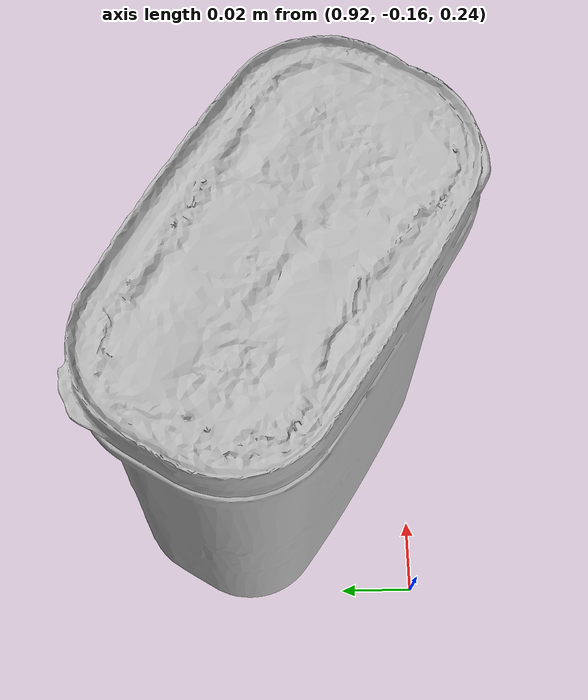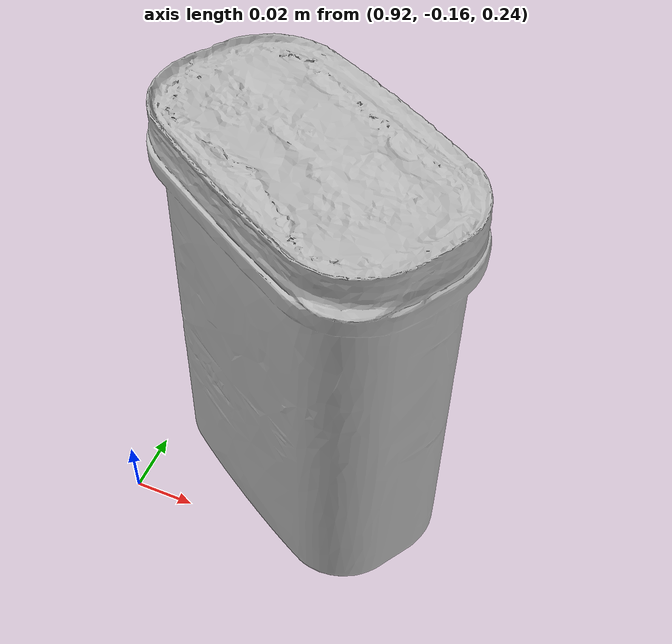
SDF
<?xml version='1.0'?>
<sdf version='1.6'>
 <model name='ACE_Coffee_Mug_Kristen_16_oz_cup'>
    <link name='link_0'>
      <visual name="visual">
        <geometry>
          <mesh>
            <uri>/home/lucfra/.ignition/fuel/fuel.ignitionrobotics.org/googleresearch/models/ace_coffee_mug_kristen_16_oz_cup/1/meshes/model.obj</uri>
          </mesh>
        </geometry>
      </visual>
      <collision name="collision_0">
        <geometry>
          <mesh>
            <uri>/home/lucfra/.ignition/fuel/fuel.ignitionrobotics.org/googleresearch/models/ace_coffee_mug_kristen_16_oz_cup/1/meshes/model.obj</uri>
          </mesh>
        </geometry>
      </collision>
      <self_collide>0</self_collide>
        <inertial>
          <pose>0 0 0 0 -0 0</pose>
          <inertia>
            <ixx>0.1</ixx>
            <ixy>0</ixy>
            <ixz>0</ixz>
            <iyy>0.1</iyy>
            <iyz>0</iyz>
            <izz>0.1</izz>
          </inertia>
          <mass>0.1</mass>
      </inertial>
      <enable_wind>0</enable_wind>
      <kinematic>0</kinematic>
    </link>
    <pose>0.968281 -0.122756 0.231578 0 -0 1.019229</pose>
  </model>
</sdf>
